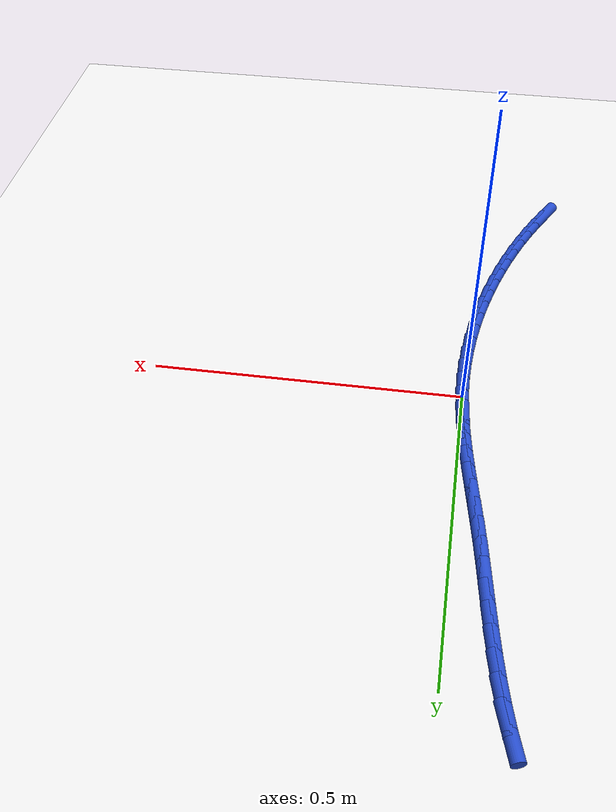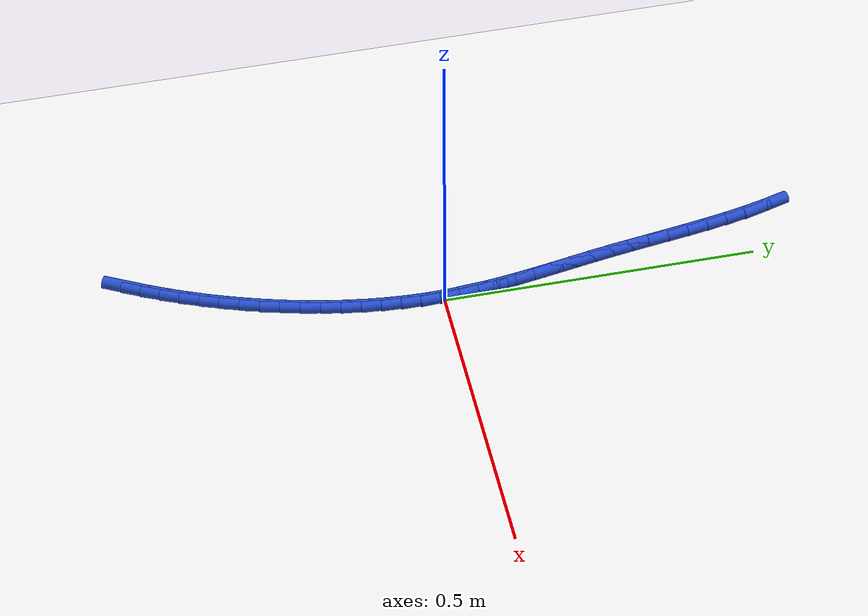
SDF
<sdf version="1.6">
 <world name="default">
  <model name="ground_plane">
   <static>1</static>
   <link name="link">
    <collision name="collision">
     <geometry><plane><normal>0 0 1</normal><size>100 100</size></plane></geometry>
     <surface><friction><ode><mu>100</mu><mu2>50</mu2></ode></friction></surface>
    </collision>
    <visual name="visual">
     <cast_shadows>0</cast_shadows>
     <geometry><plane><normal>0 0 1</normal><size>100 100</size></plane></geometry>
     <material>
      <script><uri>file://media/materials/scripts/gazebo.material</uri><name>Gazebo/WhiteGlow</name></script>
     </material>
    </visual>
   </link>
  </model>
  <model name="line">
   <link name="link_0">
    <pose>1.9081958235744878e-17 2.7755575615628914e-17 0.01 0 1.57 -1.5188802915964286</pose>
    <collision name="collision">
     <geometry><cylinder><radius>0.01</radius><length>0.08</length></cylinder></geometry>
    </collision>
    <visual name="visual">
     <material>
      <script><name>Gazebo/Blue</name><uri>file://media/materials/scripts/gazebo.material</uri></script>
     </material>
     <geometry><cylinder><radius>0.01</radius><length>0.08</length></cylinder></geometry>
    </visual>
   </link>
   <link name="link_1">
    <pose>-0.00159963294675013 0.030784237129509895 0.01 0 1.57 -1.480813167682039</pose>
    <collision name="collision">
     <geometry><cylinder><radius>0.01</radius><length>0.08</length></cylinder></geometry>
    </collision>
    <visual name="visual">
     <material>
      <script><name>Gazebo/Blue</name><uri>file://media/materials/scripts/gazebo.material</uri></script>
     </material>
     <geometry><cylinder><radius>0.01</radius><length>0.08</length></cylinder></geometry>
    </visual>
   </link>
   <link name="link_2">
    <pose>-0.004365060638754378 0.06143397010637414 0.01 0 1.57 -1.4492488583605578</pose>
    <collision name="collision">
     <geometry><cylinder><radius>0.01</radius><length>0.08</length></cylinder></geometry>
    </collision>
    <visual name="visual">
     <material>
      <script><name>Gazebo/Blue</name><uri>file://media/materials/scripts/gazebo.material</uri></script>
     </material>
     <geometry><cylinder><radius>0.01</radius><length>0.08</length></cylinder></geometry>
    </visual>
   </link>
   <link name="link_3">
    <pose>-0.008102973358186778 0.09203507519566667 0.01 0 1.57 -1.4244183550075125</pose>
    <collision name="collision">
     <geometry><cylinder><radius>0.01</radius><length>0.08</length></cylinder></geometry>
    </collision>
    <visual name="visual">
     <material>
      <script><name>Gazebo/Blue</name><uri>file://media/materials/scripts/gazebo.material</uri></script>
     </material>
     <geometry><cylinder><radius>0.01</radius><length>0.08</length></cylinder></geometry>
    </visual>
   </link>
   <link name="link_4">
    <pose>-0.012620061387221403 0.12267342866246148 0.01 0 1.57 -1.406405570906267</pose>
    <collision name="collision">
     <geometry><cylinder><radius>0.01</radius><length>0.08</length></cylinder></geometry>
    </collision>
    <visual name="visual">
     <material>
      <script><name>Gazebo/Blue</name><uri>file://media/materials/scripts/gazebo.material</uri></script>
     </material>
     <geometry><cylinder><radius>0.01</radius><length>0.08</length></cylinder></geometry>
    </visual>
   </link>
   <link name="link_5">
    <pose>-0.0177230150080323 0.15343490677183247 0.01 0 1.57 -1.395180778490515</pose>
    <collision name="collision">
     <geometry><cylinder><radius>0.01</radius><length>0.08</length></cylinder></geometry>
    </collision>
    <visual name="visual">
     <material>
      <script><name>Gazebo/Blue</name><uri>file://media/materials/scripts/gazebo.material</uri></script>
     </material>
     <geometry><cylinder><radius>0.01</radius><length>0.08</length></cylinder></geometry>
    </visual>
   </link>
   <link name="link_6">
    <pose>-0.02321852450279352 0.1844053857888535 0.01 0 1.57 -1.3906287343230703</pose>
    <collision name="collision">
     <geometry><cylinder><radius>0.01</radius><length>0.08</length></cylinder></geometry>
    </collision>
    <visual name="visual">
     <material>
      <script><name>Gazebo/Blue</name><uri>file://media/materials/scripts/gazebo.material</uri></script>
     </material>
     <geometry><cylinder><radius>0.01</radius><length>0.08</length></cylinder></geometry>
    </visual>
   </link>
   <link name="link_7">
    <pose>-0.028913280153679125 0.2156707419785985 0.01 0 1.57 -1.3925689515927684</pose>
    <collision name="collision">
     <geometry><cylinder><radius>0.01</radius><length>0.08</length></cylinder></geometry>
    </collision>
    <visual name="visual">
     <material>
      <script><name>Gazebo/Blue</name><uri>file://media/materials/scripts/gazebo.material</uri></script>
     </material>
     <geometry><cylinder><radius>0.01</radius><length>0.08</length></cylinder></geometry>
    </visual>
   </link>
   <link name="link_8">
    <pose>-0.03461397224286319 0.24731685160614147 0.01 0 1.57 -1.4007676501543929</pose>
    <collision name="collision">
     <geometry><cylinder><radius>0.01</radius><length>0.08</length></cylinder></geometry>
    </collision>
    <visual name="visual">
     <material>
      <script><name>Gazebo/Blue</name><uri>file://media/materials/scripts/gazebo.material</uri></script>
     </material>
     <geometry><cylinder><radius>0.01</radius><length>0.08</length></cylinder></geometry>
    </visual>
   </link>
   <link name="link_9">
    <pose>-0.040127291052519755 0.2794295909365563 0.01 0 1.57 -1.4132256617355767</pose>
    <collision name="collision">
     <geometry><cylinder><radius>0.01</radius><length>0.08</length></cylinder></geometry>
    </collision>
    <visual name="visual">
     <material>
      <script><name>Gazebo/Blue</name><uri>file://media/materials/scripts/gazebo.material</uri></script>
     </material>
     <geometry><cylinder><radius>0.01</radius><length>0.08</length></cylinder></geometry>
    </visual>
   </link>
   <link name="link_10">
    <pose>-0.04531178999527231 0.3120595220701327 0.01 0 1.57 -1.4213807271817895</pose>
    <collision name="collision">
     <geometry><cylinder><radius>0.01</radius><length>0.08</length></cylinder></geometry>
    </collision>
    <visual name="visual">
     <material>
      <script><name>Gazebo/Blue</name><uri>file://media/materials/scripts/gazebo.material</uri></script>
     </material>
     <geometry><cylinder><radius>0.01</radius><length>0.08</length></cylinder></geometry>
    </visual>
   </link>
   <link name="link_11">
    <pose>-0.050282951342190824 0.34508226147687576 0.01 0 1.57 -1.422872848550074</pose>
    <collision name="collision">
     <geometry><cylinder><radius>0.01</radius><length>0.08</length></cylinder></geometry>
    </collision>
    <visual name="visual">
     <material>
      <script><name>Gazebo/Blue</name><uri>file://media/materials/scripts/gazebo.material</uri></script>
     </material>
     <geometry><cylinder><radius>0.01</radius><length>0.08</length></cylinder></geometry>
    </visual>
   </link>
   <link name="link_12">
    <pose>-0.0552356739835631 0.3783193499943837 0.01 0 1.57 -1.4178449396806017</pose>
    <collision name="collision">
     <geometry><cylinder><radius>0.01</radius><length>0.08</length></cylinder></geometry>
    </collision>
    <visual name="visual">
     <material>
      <script><name>Gazebo/Blue</name><uri>file://media/materials/scripts/gazebo.material</uri></script>
     </material>
     <geometry><cylinder><radius>0.01</radius><length>0.08</length></cylinder></geometry>
    </visual>
   </link>
   <link name="link_13">
    <pose>-0.06036488005807191 0.41159231263017193 0.01 0 1.57 -1.406267828261708</pose>
    <collision name="collision">
     <geometry><cylinder><radius>0.01</radius><length>0.08</length></cylinder></geometry>
    </collision>
    <visual name="visual">
     <material>
      <script><name>Gazebo/Blue</name><uri>file://media/materials/scripts/gazebo.material</uri></script>
     </material>
     <geometry><cylinder><radius>0.01</radius><length>0.08</length></cylinder></geometry>
    </visual>
   </link>
   <link name="link_14">
    <pose>-0.06586549170440008 0.44472267439175545 0.01 0 1.57 -1.387946446707864</pose>
    <collision name="collision">
     <geometry><cylinder><radius>0.01</radius><length>0.08</length></cylinder></geometry>
    </collision>
    <visual name="visual">
     <material>
      <script><name>Gazebo/Blue</name><uri>file://media/materials/scripts/gazebo.material</uri></script>
     </material>
     <geometry><cylinder><radius>0.01</radius><length>0.08</length></cylinder></geometry>
    </visual>
   </link>
   <link name="link_15">
    <pose>-0.0719324310612304 0.47753196028664974 0.01 0 1.57 -1.3625255270032168</pose>
    <collision name="collision">
     <geometry><cylinder><radius>0.01</radius><length>0.08</length></cylinder></geometry>
    </collision>
    <visual name="visual">
     <material>
      <script><name>Gazebo/Blue</name><uri>file://media/materials/scripts/gazebo.material</uri></script>
     </material>
     <geometry><cylinder><radius>0.01</radius><length>0.08</length></cylinder></geometry>
    </visual>
   </link>
   <link name="link_16">
    <pose>-0.07876062026724572 0.5098416953223701 0.01 0 1.57 -1.3294976411010102</pose>
    <collision name="collision">
     <geometry><cylinder><radius>0.01</radius><length>0.08</length></cylinder></geometry>
    </collision>
    <visual name="visual">
     <material>
      <script><name>Gazebo/Blue</name><uri>file://media/materials/scripts/gazebo.material</uri></script>
     </material>
     <geometry><cylinder><radius>0.01</radius><length>0.08</length></cylinder></geometry>
    </visual>
   </link>
   <link name="link_17">
    <pose>-0.08654498146112878 0.5414734045064316 0.01 0 1.57 -1.2882198751110274</pose>
    <collision name="collision">
     <geometry><cylinder><radius>0.01</radius><length>0.08</length></cylinder></geometry>
    </collision>
    <visual name="visual">
     <material>
      <script><name>Gazebo/Blue</name><uri>file://media/materials/scripts/gazebo.material</uri></script>
     </material>
     <geometry><cylinder><radius>0.01</radius><length>0.08</length></cylinder></geometry>
    </visual>
   </link>
   <link name="link_204">
    <pose>-0.12447917739197852 -0.4830734881178118 0.01 0 1.57 1.0843811122440328</pose>
    <collision name="collision">
     <geometry><cylinder><radius>0.01</radius><length>0.08</length></cylinder></geometry>
    </collision>
    <visual name="visual">
     <material>
      <script><name>Gazebo/Blue</name><uri>file://media/materials/scripts/gazebo.material</uri></script>
     </material>
     <geometry><cylinder><radius>0.01</radius><length>0.08</length></cylinder></geometry>
    </visual>
   </link>
   <link name="link_205">
    <pose>-0.10981973200790741 -0.45535098375405775 0.01 0 1.57 1.1158387669946286</pose>
    <collision name="collision">
     <geometry><cylinder><radius>0.01</radius><length>0.08</length></cylinder></geometry>
    </collision>
    <visual name="visual">
     <material>
      <script><name>Gazebo/Blue</name><uri>file://media/materials/scripts/gazebo.material</uri></script>
     </material>
     <geometry><cylinder><radius>0.01</radius><length>0.08</length></cylinder></geometry>
    </visual>
   </link>
   <link name="link_206">
    <pose>-0.09601399309694864 -0.42712901746305726 0.01 0 1.57 1.1468176607188822</pose>
    <collision name="collision">
     <geometry><cylinder><radius>0.01</radius><length>0.08</length></cylinder></geometry>
    </collision>
    <visual name="visual">
     <material>
      <script><name>Gazebo/Blue</name><uri>file://media/materials/scripts/gazebo.material</uri></script>
     </material>
     <geometry><cylinder><radius>0.01</radius><length>0.08</length></cylinder></geometry>
    </visual>
   </link>
   <link name="link_207">
    <pose>-0.08306392540080791 -0.39843736728860496 0.01 0 1.57 1.1773431198748339</pose>
    <collision name="collision">
     <geometry><cylinder><radius>0.01</radius><length>0.08</length></cylinder></geometry>
    </collision>
    <visual name="visual">
     <material>
      <script><name>Gazebo/Blue</name><uri>file://media/materials/scripts/gazebo.material</uri></script>
     </material>
     <geometry><cylinder><radius>0.01</radius><length>0.08</length></cylinder></geometry>
    </visual>
   </link>
   <link name="link_208">
    <pose>-0.0709714936611921 -0.3693058112744973 0.01 0 1.57 1.2074425389577232</pose>
    <collision name="collision">
     <geometry><cylinder><radius>0.01</radius><length>0.08</length></cylinder></geometry>
    </collision>
    <visual name="visual">
     <material>
      <script><name>Gazebo/Blue</name><uri>file://media/materials/scripts/gazebo.material</uri></script>
     </material>
     <geometry><cylinder><radius>0.01</radius><length>0.08</length></cylinder></geometry>
    </visual>
   </link>
   <link name="link_209">
    <pose>-0.05973866261980696 -0.339764127464529 0.01 0 1.57 1.2371450501810173</pose>
    <collision name="collision">
     <geometry><cylinder><radius>0.01</radius><length>0.08</length></cylinder></geometry>
    </collision>
    <visual name="visual">
     <material>
      <script><name>Gazebo/Blue</name><uri>file://media/materials/scripts/gazebo.material</uri></script>
     </material>
     <geometry><cylinder><radius>0.01</radius><length>0.08</length></cylinder></geometry>
    </visual>
   </link>
   <link name="link_210">
    <pose>-0.04936739701835863 -0.3098420939024952 0.01 0 1.57 1.2664813058705233</pose>
    <collision name="collision">
     <geometry><cylinder><radius>0.01</radius><length>0.08</length></cylinder></geometry>
    </collision>
    <visual name="visual">
     <material>
      <script><name>Gazebo/Blue</name><uri>file://media/materials/scripts/gazebo.material</uri></script>
     </material>
     <geometry><cylinder><radius>0.01</radius><length>0.08</length></cylinder></geometry>
    </visual>
   </link>
   <link name="link_211">
    <pose>-0.0398596647403818 -0.2795694904355324 0.01 0 1.57 1.2957553534888433</pose>
    <collision name="collision">
     <geometry><cylinder><radius>0.01</radius><length>0.08</length></cylinder></geometry>
    </collision>
    <visual name="visual">
     <material>
      <script><name>Gazebo/Blue</name><uri>file://media/materials/scripts/gazebo.material</uri></script>
     </material>
     <geometry><cylinder><radius>0.01</radius><length>0.08</length></cylinder></geometry>
    </visual>
   </link>
   <link name="link_212">
    <pose>-0.031228166169444696 -0.24898225713279926 0.01 0 1.57 1.325929210159809</pose>
    <collision name="collision">
     <geometry><cylinder><radius>0.01</radius><length>0.08</length></cylinder></geometry>
    </collision>
    <visual name="visual">
     <material>
      <script><name>Gazebo/Blue</name><uri>file://media/materials/scripts/gazebo.material</uri></script>
     </material>
     <geometry><cylinder><radius>0.01</radius><length>0.08</length></cylinder></geometry>
    </visual>
   </link>
   <link name="link_213">
    <pose>-0.023520323501868987 -0.2181362636301847 0.01 0 1.57 1.357324028989886</pose>
    <collision name="collision">
     <geometry><cylinder><radius>0.01</radius><length>0.08</length></cylinder></geometry>
    </collision>
    <visual name="visual">
     <material>
      <script><name>Gazebo/Blue</name><uri>file://media/materials/scripts/gazebo.material</uri></script>
     </material>
     <geometry><cylinder><radius>0.01</radius><length>0.08</length></cylinder></geometry>
    </visual>
   </link>
   <link name="link_214">
    <pose>-0.016790567807619318 -0.1870914025048883 0.01 0 1.57 1.390090886987207</pose>
    <collision name="collision">
     <geometry><cylinder><radius>0.01</radius><length>0.08</length></cylinder></geometry>
    </collision>
    <visual name="visual">
     <material>
      <script><name>Gazebo/Blue</name><uri>file://media/materials/scripts/gazebo.material</uri></script>
     </material>
     <geometry><cylinder><radius>0.01</radius><length>0.08</length></cylinder></geometry>
    </visual>
   </link>
   <link name="link_215">
    <pose>-0.01109333015666053 -0.15590756633411018 0.01 0 1.57 1.4243833132827137</pose>
    <collision name="collision">
     <geometry><cylinder><radius>0.01</radius><length>0.08</length></cylinder></geometry>
    </collision>
    <visual name="visual">
     <material>
      <script><name>Gazebo/Blue</name><uri>file://media/materials/scripts/gazebo.material</uri></script>
     </material>
     <geometry><cylinder><radius>0.01</radius><length>0.08</length></cylinder></geometry>
    </visual>
   </link>
   <link name="link_216">
    <pose>-0.006483041618957397 -0.12464464769504985 0.01 0 1.57 1.4603564095696164</pose>
    <collision name="collision">
     <geometry><cylinder><radius>0.01</radius><length>0.08</length></cylinder></geometry>
    </collision>
    <visual name="visual">
     <material>
      <script><name>Gazebo/Blue</name><uri>file://media/materials/scripts/gazebo.material</uri></script>
     </material>
     <geometry><cylinder><radius>0.01</radius><length>0.08</length></cylinder></geometry>
    </visual>
   </link>
   <link name="link_217">
    <pose>-0.003014133264474992 -0.09336253916490896 0.01 0 1.57 1.4981651964667897</pose>
    <collision name="collision">
     <geometry><cylinder><radius>0.01</radius><length>0.08</length></cylinder></geometry>
    </collision>
    <visual name="visual">
     <material>
      <script><name>Gazebo/Blue</name><uri>file://media/materials/scripts/gazebo.material</uri></script>
     </material>
     <geometry><cylinder><radius>0.01</radius><length>0.08</length></cylinder></geometry>
    </visual>
   </link>
   <link name="link_218">
    <pose>-0.0007410361631780484 -0.06212113332088702 0.01 0 1.57 1.5379620120998674</pose>
    <collision name="collision">
     <geometry><cylinder><radius>0.01</radius><length>0.08</length></cylinder></geometry>
    </collision>
    <visual name="visual">
     <material>
      <script><name>Gazebo/Blue</name><uri>file://media/materials/scripts/gazebo.material</uri></script>
     </material>
     <geometry><cylinder><radius>0.01</radius><length>0.08</length></cylinder></geometry>
    </visual>
   </link>
   <link name="link_219">
    <pose>0.0002818186149685818 -0.030980322740184203 0.01 0 1.57 -1.5616998805044398</pose>
    <collision name="collision">
     <geometry><cylinder><radius>0.01</radius><length>0.08</length></cylinder></geometry>
    </collision>
    <visual name="visual">
     <material>
      <script><name>Gazebo/Blue</name><uri>file://media/materials/scripts/gazebo.material</uri></script>
     </material>
     <geometry><cylinder><radius>0.01</radius><length>0.08</length></cylinder></geometry>
    </visual>
   </link>
   <link name="link_220">
    <pose>1.9081958235744878e-17 7.632783294297951e-17 0.01 0 1.57 -1.5175007409331531</pose>
    <collision name="collision">
     <geometry><cylinder><radius>0.01</radius><length>0.08</length></cylinder></geometry>
    </collision>
    <visual name="visual">
     <material>
      <script><name>Gazebo/Blue</name><uri>file://media/materials/scripts/gazebo.material</uri></script>
     </material>
     <geometry><cylinder><radius>0.01</radius><length>0.08</length></cylinder></geometry>
    </visual>
   </link>
   <link name="link_221">
    <pose>-0.001640923078048525 0.03075994232246331 0.01 0 1.57 -1.4709168036214897</pose>
    <collision name="collision">
     <geometry><cylinder><radius>0.01</radius><length>0.08</length></cylinder></geometry>
    </collision>
    <visual name="visual">
     <material>
      <script><name>Gazebo/Blue</name><uri>file://media/materials/scripts/gazebo.material</uri></script>
     </material>
     <geometry><cylinder><radius>0.01</radius><length>0.08</length></cylinder></geometry>
    </visual>
   </link>
   <link name="link_222">
    <pose>-0.0046953816891420665 0.06123961165000832 0.01 0 1.57 -1.4942737451041324</pose>
    <collision name="collision">
     <geometry><cylinder><radius>0.01</radius><length>0.08</length></cylinder></geometry>
    </collision>
    <visual name="visual">
     <material>
      <script><name>Gazebo/Blue</name><uri>file://media/materials/scripts/gazebo.material</uri></script>
     </material>
     <geometry><cylinder><radius>0.01</radius><length>0.08</length></cylinder></geometry>
    </visual>
   </link>
  </model>
 </world>
</sdf>
